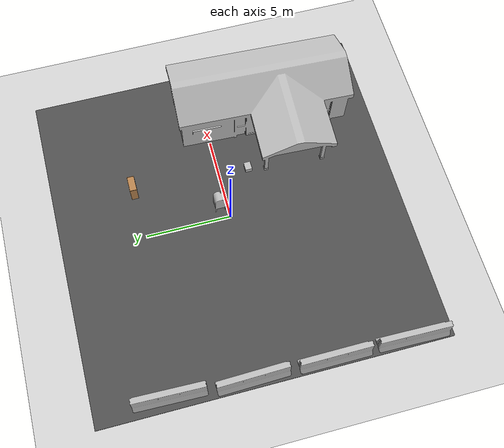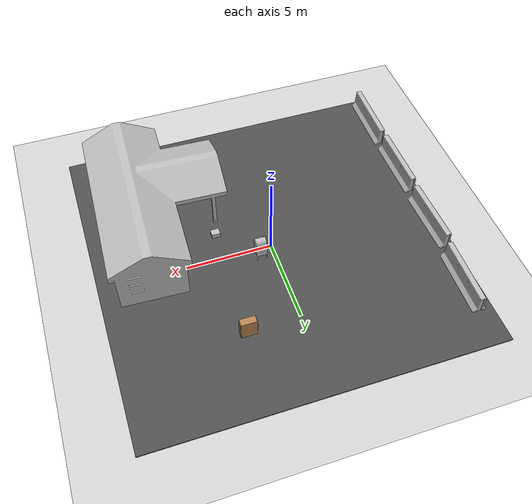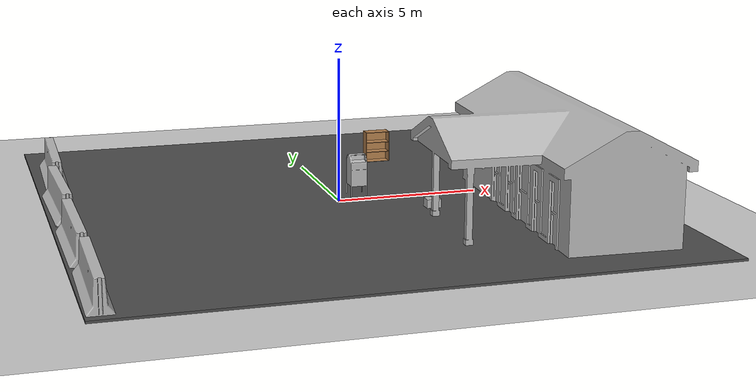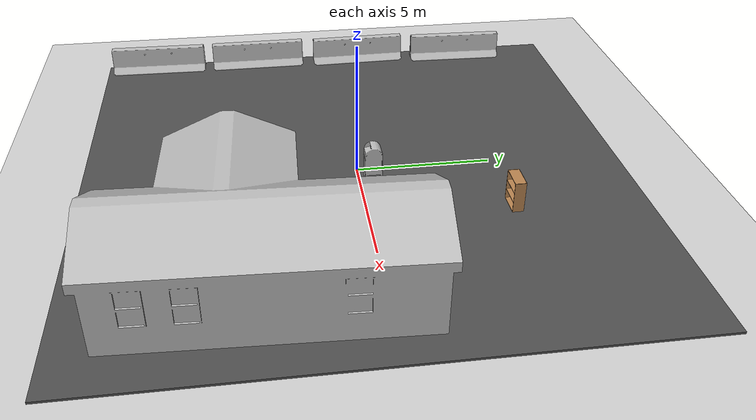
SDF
<sdf version="1.6">
 <world name="default">
  <light name="sun" type="directional">
   <pose>0 0 10 0 -0 0</pose>
   <diffuse>0.8 0.8 0.8 1</diffuse>
   <specular>0.2 0.2 0.2 1</specular>
   <attenuation>
    <range>1000</range>
    <constant>0.9</constant>
    <linear>0.01</linear>
    <quadratic>0.001</quadratic>
   </attenuation>
   <direction>-0.5 0.1 -0.9</direction>
  </light>
  <model name="ground_plane">
   <static>1</static>
   <link name="link">
    <collision name="collision">
     <geometry><plane><normal>0 0 1</normal><size>100 100</size></plane></geometry>
     <surface><friction><ode><mu>100</mu><mu2>50</mu2></ode></friction></surface>
    </collision>
    <visual name="visual">
     <cast_shadows>0</cast_shadows>
     <geometry><plane><normal>0 0 1</normal><size>100 100</size></plane></geometry>
     <material>
      <script><uri>file://media/materials/scripts/gazebo.material</uri><name>Gazebo/Grey</name></script>
     </material>
    </visual>
   </link>
  </model>
  <gravity>0 0 -9.8</gravity>
  <magnetic_field>6e-06 2.3e-05 -4.2e-05</magnetic_field>
  <atmosphere type="adiabatic"/>
  <physics name="default_physics" default="0" type="ode">
   <max_step_size>0.001</max_step_size>
   <real_time_factor>1</real_time_factor>
   <real_time_update_rate>1000</real_time_update_rate>
  </physics>
  <scene><ambient>0.4 0.4 0.4 1</ambient><background>0.7 0.7 0.7 1</background><shadows>1</shadows></scene>
  <audio><device>default</device></audio>
  <spherical_coordinates>
   <surface_model>EARTH_WGS84</surface_model>
   <latitude_deg>0</latitude_deg>
   <longitude_deg>0</longitude_deg>
   <elevation>0</elevation>
   <heading_deg>0</heading_deg>
  </spherical_coordinates>
  <model name="jersey_barrier">
   <static>1</static>
   <link name="link">
    <visual name="visual">
     <geometry><mesh><uri>model://jersey_barrier/meshes/jersey_barrier.dae</uri></mesh></geometry>
    </visual>
    <collision name="upright">
     <pose>0 0 0.5715 0 -0 0</pose>
     <geometry><box><size>4.06542 0.3063 1.143</size></box></geometry>
    </collision>
    <collision name="base">
     <pose>0 0 0.032258 0 -0 0</pose>
     <geometry><box><size>4.06542 0.8107 0.064516</size></box></geometry>
    </collision>
    <collision name="base2">
     <pose>0 0 0.1 0 -0 0</pose>
     <geometry><box><size>4.06542 0.65 0.1</size></box></geometry>
    </collision>
    <collision name="base3">
     <pose>0 0 0.2 0 -0 0</pose>
     <geometry><box><size>4.06542 0.5 0.1</size></box></geometry>
    </collision>
    <collision name="left-angle">
     <pose>0 -0.224 0.2401 0.9 -0 0</pose>
     <geometry><box><size>4.06542 0.5 0.064516</size></box></geometry>
    </collision>
    <collision name="right-angle">
     <pose>0 0.224 0.2401 -0.9 0 0</pose>
     <geometry><box><size>4.06542 0.5 0.064516</size></box></geometry>
    </collision>
   </link>
   <pose>-9.43548 1.26022 0 0 0 -1.54804</pose>
  </model>
  <model name="post_office">
   <static>1</static>
   <link name="link">
    <collision name="collision">
     <geometry><mesh><uri>model://post_office/meshes/post_office.dae</uri></mesh></geometry>
    </collision>
    <visual name="visual">
     <geometry><mesh><uri>model://post_office/meshes/post_office.dae</uri></mesh></geometry>
    </visual>
   </link>
   <pose>6.89975 -3.51177 0 0 -0 1.52992</pose>
  </model>
  <model name="asphalt_plane">
   <static>1</static>
   <link name="link">
    <collision name="collision"><geometry><box><size>20 20 0.1</size></box></geometry></collision>
    <visual name="visual">
     <cast_shadows>0</cast_shadows>
     <geometry><box><size>20 20 0.1</size></box></geometry>
     <material>
      <script>
       <uri>model://asphalt_plane/materials/scripts</uri>
       <uri>model://asphalt_plane/materials/textures</uri>
       <name>vrc/asphalt</name>
      </script>
     </material>
    </visual>
   </link>
   <pose>0.037085 -0.052098 0 0 -0 0</pose>
  </model>
  <model name="jersey_barrier_0">
   <static>1</static>
   <link name="link">
    <visual name="visual">
     <geometry><mesh><uri>model://jersey_barrier/meshes/jersey_barrier.dae</uri></mesh></geometry>
    </visual>
    <collision name="upright">
     <pose>0 0 0.5715 0 -0 0</pose>
     <geometry><box><size>4.06542 0.3063 1.143</size></box></geometry>
    </collision>
    <collision name="base">
     <pose>0 0 0.032258 0 -0 0</pose>
     <geometry><box><size>4.06542 0.8107 0.064516</size></box></geometry>
    </collision>
    <collision name="base2">
     <pose>0 0 0.1 0 -0 0</pose>
     <geometry><box><size>4.06542 0.65 0.1</size></box></geometry>
    </collision>
    <collision name="base3">
     <pose>0 0 0.2 0 -0 0</pose>
     <geometry><box><size>4.06542 0.5 0.1</size></box></geometry>
    </collision>
    <collision name="left-angle">
     <pose>0 -0.224 0.2401 0.9 -0 0</pose>
     <geometry><box><size>4.06542 0.5 0.064516</size></box></geometry>
    </collision>
    <collision name="right-angle">
     <pose>0 0.224 0.2401 -0.9 0 0</pose>
     <geometry><box><size>4.06542 0.5 0.064516</size></box></geometry>
    </collision>
   </link>
   <pose>-9.46749 -3.323 0 0 0 -1.56717</pose>
  </model>
  <model name="jersey_barrier_1">
   <static>1</static>
   <link name="link">
    <visual name="visual">
     <geometry><mesh><uri>model://jersey_barrier/meshes/jersey_barrier.dae</uri></mesh></geometry>
    </visual>
    <collision name="upright">
     <pose>0 0 0.5715 0 -0 0</pose>
     <geometry><box><size>4.06542 0.3063 1.143</size></box></geometry>
    </collision>
    <collision name="base">
     <pose>0 0 0.032258 0 -0 0</pose>
     <geometry><box><size>4.06542 0.8107 0.064516</size></box></geometry>
    </collision>
    <collision name="base2">
     <pose>0 0 0.1 0 -0 0</pose>
     <geometry><box><size>4.06542 0.65 0.1</size></box></geometry>
    </collision>
    <collision name="base3">
     <pose>0 0 0.2 0 -0 0</pose>
     <geometry><box><size>4.06542 0.5 0.1</size></box></geometry>
    </collision>
    <collision name="left-angle">
     <pose>0 -0.224 0.2401 0.9 -0 0</pose>
     <geometry><box><size>4.06542 0.5 0.064516</size></box></geometry>
    </collision>
    <collision name="right-angle">
     <pose>0 0.224 0.2401 -0.9 0 0</pose>
     <geometry><box><size>4.06542 0.5 0.064516</size></box></geometry>
    </collision>
   </link>
   <pose>-9.47314 -7.77695 0 0 0 -1.58805</pose>
  </model>
  <model name="jersey_barrier_2">
   <static>1</static>
   <link name="link">
    <visual name="visual">
     <geometry><mesh><uri>model://jersey_barrier/meshes/jersey_barrier.dae</uri></mesh></geometry>
    </visual>
    <collision name="upright">
     <pose>0 0 0.5715 0 -0 0</pose>
     <geometry><box><size>4.06542 0.3063 1.143</size></box></geometry>
    </collision>
    <collision name="base">
     <pose>0 0 0.032258 0 -0 0</pose>
     <geometry><box><size>4.06542 0.8107 0.064516</size></box></geometry>
    </collision>
    <collision name="base2">
     <pose>0 0 0.1 0 -0 0</pose>
     <geometry><box><size>4.06542 0.65 0.1</size></box></geometry>
    </collision>
    <collision name="base3">
     <pose>0 0 0.2 0 -0 0</pose>
     <geometry><box><size>4.06542 0.5 0.1</size></box></geometry>
    </collision>
    <collision name="left-angle">
     <pose>0 -0.224 0.2401 0.9 -0 0</pose>
     <geometry><box><size>4.06542 0.5 0.064516</size></box></geometry>
    </collision>
    <collision name="right-angle">
     <pose>0 0.224 0.2401 -0.9 0 0</pose>
     <geometry><box><size>4.06542 0.5 0.064516</size></box></geometry>
    </collision>
   </link>
   <pose>-9.21636 5.7901 0 0 -0 1.54456</pose>
  </model>
  <model name="postbox">
   <static>1</static>
   <link name="link">
    <collision name="collision">
     <geometry><mesh><uri>model://postbox/meshes/postbox.dae</uri></mesh></geometry>
    </collision>
    <visual name="visual"><geometry><mesh><uri>model://postbox/meshes/postbox.dae</uri></mesh></geometry></visual>
   </link>
   <pose>0.792086 0.486382 0 0 -0 0</pose>
  </model>
  <model name="cardboard_box">
   <pose>2.81621 -1.77255 0.199 0 -0 0</pose>
   <link name="link">
    <inertial>
     <mass>2</mass>
     <inertia>
      <ixx>0.0416667</ixx>
      <ixy>0</ixy>
      <ixz>0</ixz>
      <iyy>0.0566667</iyy>
      <iyz>0</iyz>
      <izz>0.0683333</izz>
     </inertia>
    </inertial>
    <collision name="collision">
     <geometry><box><size>0.5 0.4 0.3</size></box></geometry>
     <surface>
      <friction><ode><mu>1</mu><mu2>1</mu2></ode></friction>
      <contact><ode><kp>1e+07</kp><kd>1</kd><min_depth>0.001</min_depth><max_vel>0.1</max_vel></ode></contact>
     </surface>
    </collision>
    <visual name="visual">
     <pose>0 0 -0.15 0 -0 0</pose>
     <geometry>
      <mesh><uri>model://cardboard_box/meshes/cardboard_box.dae</uri><scale>1.25932 1.00745 0.755591</scale></mesh>
     </geometry>
    </visual>
   </link>
  </model>
  <model name="bookshelf">
   <static>1</static>
   <link name="link">
    <inertial><mass>1</mass></inertial>
    <collision name="back">
     <pose>0 0.005 0.6 0 -0 0</pose>
     <geometry><box><size>0.9 0.01 1.2</size></box></geometry>
    </collision>
    <visual name="visual1">
     <pose>0 0.005 0.6 0 -0 0</pose>
     <geometry><box><size>0.9 0.01 1.2</size></box></geometry>
     <material>
      <script><uri>file://media/materials/scripts/gazebo.material</uri><name>Gazebo/Wood</name></script>
     </material>
    </visual>
    <collision name="left_side">
     <pose>0.45 -0.195 0.6 0 -0 0</pose>
     <geometry><box><size>0.02 0.4 1.2</size></box></geometry>
    </collision>
    <visual name="visual2">
     <pose>0.45 -0.195 0.6 0 -0 0</pose>
     <geometry><box><size>0.02 0.4 1.2</size></box></geometry>
     <material>
      <script><uri>file://media/materials/scripts/gazebo.material</uri><name>Gazebo/Wood</name></script>
     </material>
    </visual>
    <collision name="right_side">
     <pose>-0.45 -0.195 0.6 0 -0 0</pose>
     <geometry><box><size>0.02 0.4 1.2</size></box></geometry>
    </collision>
    <visual name="visual3">
     <pose>-0.45 -0.195 0.6 0 -0 0</pose>
     <geometry><box><size>0.02 0.4 1.2</size></box></geometry>
     <material>
      <script><uri>file://media/materials/scripts/gazebo.material</uri><name>Gazebo/Wood</name></script>
     </material>
    </visual>
    <collision name="bottom">
     <pose>0 -0.195 0.03 0 -0 0</pose>
     <geometry><box><size>0.88 0.4 0.06</size></box></geometry>
    </collision>
    <visual name="visual4">
     <pose>0 -0.195 0.03 0 -0 0</pose>
     <geometry><box><size>0.88 0.4 0.06</size></box></geometry>
     <material>
      <script><uri>file://media/materials/scripts/gazebo.material</uri><name>Gazebo/Wood</name></script>
     </material>
    </visual>
    <collision name="top">
     <pose>0 -0.195 1.19 0 -0 0</pose>
     <geometry><box><size>0.88 0.4 0.02</size></box></geometry>
    </collision>
    <visual name="visual5">
     <pose>0 -0.195 1.19 0 -0 0</pose>
     <geometry><box><size>0.88 0.4 0.02</size></box></geometry>
     <material>
      <script><uri>file://media/materials/scripts/gazebo.material</uri><name>Gazebo/Wood</name></script>
     </material>
    </visual>
    <collision name="low_shelf">
     <pose>0 -0.195 0.43 0 -0 0</pose>
     <geometry><box><size>0.88 0.4 0.02</size></box></geometry>
    </collision>
    <visual name="visual6">
     <pose>0 -0.195 0.43 0 -0 0</pose>
     <geometry><box><size>0.88 0.4 0.02</size></box></geometry>
     <material>
      <script><uri>file://media/materials/scripts/gazebo.material</uri><name>Gazebo/Wood</name></script>
     </material>
    </visual>
    <collision name="high_shelf">
     <pose>0 -0.195 0.8 0 -0 0</pose>
     <geometry><box><size>0.88 0.4 0.02</size></box></geometry>
    </collision>
    <visual name="visual7">
     <pose>0 -0.195 0.8 0 -0 0</pose>
     <geometry><box><size>0.88 0.4 0.02</size></box></geometry>
     <material>
      <script><uri>file://media/materials/scripts/gazebo.material</uri><name>Gazebo/Wood</name></script>
     </material>
    </visual>
   </link>
   <pose>2.99082 5.35743 0 0 -0 0</pose>
  </model>
 </world>
</sdf>
